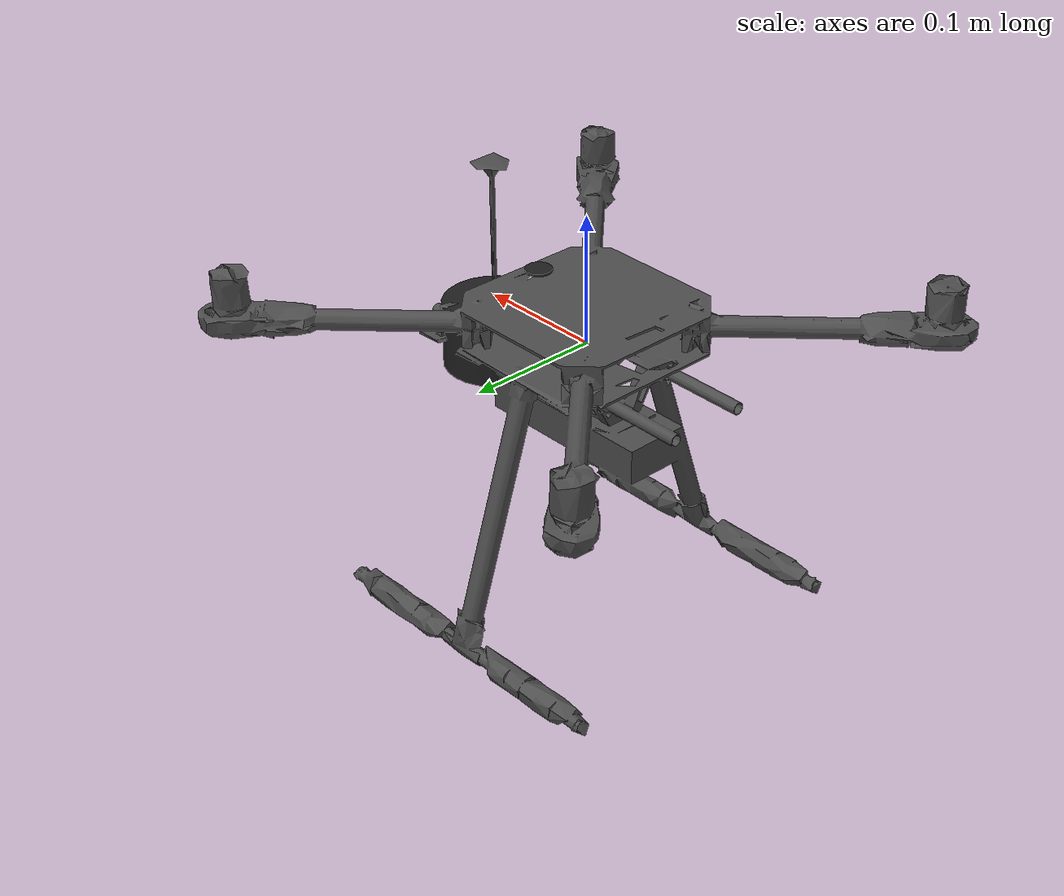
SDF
<?xml version='1.0'?>
<sdf version='1.5'>
  <model name='X5001'>
    <link name='base_link'>
      <pose>0 0 0 0 0 0</pose>
      <inertial>
        <pose>0 0 0 0 0 0</pose>
        <mass>1.543</mass>
        <inertia>
          <ixx>0.0206</ixx>
          <ixy>0</ixy>
          <ixz>0</ixz>
          <iyy>0.0210</iyy>
          <iyz>0</iyz>
          <izz>0.0297</izz>
        </inertia>
      </inertial>
      <collision name='base_link_inertia_collision'>
        <pose>0 0 0 0 0 0</pose>
        <geometry>
          <box>
            <size>0.41 0.41 0.8</size>
          </box>
        </geometry>
        <surface>
          <contact>
            <ode>
              <min_depth>0.001</min_depth>
              <max_vel>0</max_vel>
            </ode>
          </contact>
          <friction>
            <ode/>
          </friction>
        </surface>
      </collision>
      <visual name='base_link_inertia_visual'>
        <pose>0 0 0 1.5708 0 0</pose>
        <geometry>
          <mesh>
            <scale>1 1 1</scale>
            <uri>file:///home/ros_workspace/src/x500_py/models/X500_drone_mod.stl</uri>
          </mesh>
        </geometry>
        <material>
          <script>
            <name>Gazebo/DarkGrey</name>
            <uri>file://media/materials/scripts/gazebo.material</uri>
          </script>
        </material>
      </visual>
      <gravity>1</gravity>
      <velocity_decay/>
    </link>
    <link name='/imu_link'>
      <pose>0 0 0.02 0 0 0</pose>
      <inertial>
        <pose>0 0 0 0 0 0</pose>
        <mass>0.015</mass>
        <inertia>
          <ixx>1e-05</ixx>
          <ixy>0</ixy>
          <ixz>0</ixz>
          <iyy>1e-05</iyy>
          <iyz>0</iyz>
          <izz>1e-05</izz>
        </inertia>
      </inertial>
    </link>
    <joint name='/imu_joint' type='revolute'>
      <child>/imu_link</child>
      <parent>base_link</parent>
      <axis>
        <xyz>1 0 0</xyz>
        <limit>
          <lower>0</lower>
          <upper>0</upper>
          <effort>0</effort>
          <velocity>0</velocity>
        </limit>
        <dynamics>
          <spring_reference>0</spring_reference>
          <spring_stiffness>0</spring_stiffness>
        </dynamics>
        <use_parent_model_frame>1</use_parent_model_frame>
      </axis>
    </joint>

    <!-- 3D Lidar Link -->
    <link name='lidar_link'>
      <pose>0.099 0 -0.03 0 0 0</pose>
      <inertial>
        <pose>0 0 0 0 0 0</pose>
        <mass>0.01</mass>
        <inertia>
          <ixx>0.0001</ixx>
          <ixy>0</ixy>
          <ixz>0</ixz>
          <iyy>0.0001</iyy>
          <iyz>0</iyz>
          <izz>0.0001</izz>
        </inertia>
      </inertial>

      <visual name='lidar_visual'>
        <pose>0 0 0 0 0 0</pose>
        <geometry>
          <cylinder>
            <radius>0.04</radius>
            <length>0.05</length>
          </cylinder>
        </geometry>
        <material>
          <script>
            <name>Gazebo/Black</name>
            <uri>file://media/materials/scripts/gazebo.material</uri>
          </script>
        </material>
      </visual>

      <!-- 3D Lidar Sensor -->
      <sensor name='lidar_sensor' type='ray'>
        <pose>0 0 0 0 0 0</pose>
        <visualize>false</visualize>
        <update_rate>10</update_rate>
        <ray>
          <scan>
            <horizontal>
              <samples>1800</samples>
              <resolution>1</resolution>
              <min_angle>0</min_angle>
              <max_angle>6.28318</max_angle>
            </horizontal>
            <vertical>
              <samples>32</samples>
              <resolution>1</resolution>
              <min_angle>-0.963769998889</min_angle>
              <max_angle>0.126012665556</max_angle>
            </vertical>
          </scan>
          <range>
            <min>0.7</min>
            <max>40.0</max>
            <resolution>0.002</resolution>
          </range>
          <noise>
            <type>gaussian</type>
            <mean>0.0</mean>
            <stddev>0.01</stddev>
          </noise>
        </ray>
        <plugin name='gazebo_ros_laser_controller' filename='libgazebo_ros_velodyne_laser.so'>
          <robotNamespace></robotNamespace>
          <topicName>drone1/lidar/points</topicName>
          <frameName>drone1/lidar_link</frameName>
          <min_range>0.1</min_range>
          <max_range>40.0</max_range>
          <gaussianNoise>0.01</gaussianNoise>
        </plugin>
      </sensor>
    </link>

    <!-- Lidar Joint -->
    <joint name='lidar_joint' type='fixed'>
      <child>lidar_link</child>
      <parent>base_link</parent>
    </joint>

    <link name='rotor_0'>
      <pose>0.176 -0.176 0.056 0 0 0</pose>
      <inertial>
        <pose>0 0 0 0 0 0</pose>
        <mass>0.005</mass>
        <inertia>
          <ixx>9.75e-07</ixx>
          <ixy>0</ixy>
          <ixz>0</ixz>
          <iyy>0.000273104</iyy>
          <iyz>0</iyz>
          <izz>0.000274004</izz>
        </inertia>
      </inertial>
      <collision name='rotor_0_collision'>
        <pose>0 0 0 0 0 0</pose>
        <geometry>
          <cylinder>
            <length>0.005</length>
            <radius>0.128</radius>
          </cylinder>
        </geometry>
        <surface>
          <contact>
            <ode/>
          </contact>
          <friction>
            <ode/>
          </friction>
        </surface>
      </collision>
      <gravity>1</gravity>
      <velocity_decay/>
    </link>
    <joint name='rotor_0_joint' type='revolute'>
      <child>rotor_0</child>
      <parent>base_link</parent>
      <axis>
        <xyz>0 0 1</xyz>
        <limit>
          <lower>-1e+16</lower>
          <upper>1e+16</upper>
        </limit>
        <dynamics>
          <spring_reference>0</spring_reference>
          <spring_stiffness>0</spring_stiffness>
        </dynamics>
        <use_parent_model_frame>1</use_parent_model_frame>
      </axis>
    </joint>
    <link name='rotor_1'>
      <pose>-0.176 0.176 0.056 0 0 0</pose>
      <inertial>
        <pose>0 0 0 0 0 0</pose>
        <mass>0.005</mass>
        <inertia>
          <ixx>9.75e-07</ixx>
          <ixy>0</ixy>
          <ixz>0</ixz>
          <iyy>0.000273104</iyy>
          <iyz>0</iyz>
          <izz>0.000274004</izz>
        </inertia>
      </inertial>
      <collision name='rotor_1_collision'>
        <pose>0 0 0 0 0 0</pose>
        <geometry>
          <cylinder>
            <length>0.005</length>
            <radius>0.128</radius>
          </cylinder>
        </geometry>
        <surface>
          <contact>
            <ode/>
          </contact>
          <friction>
            <ode/>
          </friction>
        </surface>
      </collision>
      <gravity>1</gravity>
      <velocity_decay/>
    </link>
    <joint name='rotor_1_joint' type='revolute'>
      <child>rotor_1</child>
      <parent>base_link</parent>
      <axis>
        <xyz>0 0 1</xyz>
        <limit>
          <lower>-1e+16</lower>
          <upper>1e+16</upper>
        </limit>
        <dynamics>
          <spring_reference>0</spring_reference>
          <spring_stiffness>0</spring_stiffness>
        </dynamics>
        <use_parent_model_frame>1</use_parent_model_frame>
      </axis>
    </joint>
    <link name='rotor_2'>
      <pose>0.176 0.176 0.056 0 0 0</pose>
      <inertial>
        <pose>0 0 0 0 0 0</pose>
        <mass>0.005</mass>
        <inertia>
          <ixx>9.75e-07</ixx>
          <ixy>0</ixy>
          <ixz>0</ixz>
          <iyy>0.000273104</iyy>
          <iyz>0</iyz>
          <izz>0.000274004</izz>
        </inertia>
      </inertial>
      <collision name='rotor_2_collision'>
        <pose>0 0 0 0 0 0</pose>
        <geometry>
          <cylinder>
            <length>0.005</length>
            <radius>0.128</radius>
          </cylinder>
        </geometry>
        <surface>
          <contact>
            <ode/>
          </contact>
          <friction>
            <ode/>
          </friction>
        </surface>
      </collision>
      <gravity>1</gravity>
      <velocity_decay/>
    </link>
    <joint name='rotor_2_joint' type='revolute'>
      <child>rotor_2</child>
      <parent>base_link</parent>
      <axis>
        <xyz>0 0 1</xyz>
        <limit>
          <lower>-1e+16</lower>
          <upper>1e+16</upper>
        </limit>
        <dynamics>
          <spring_reference>0</spring_reference>
          <spring_stiffness>0</spring_stiffness>
        </dynamics>
        <use_parent_model_frame>1</use_parent_model_frame>
      </axis>
    </joint>
    <link name='rotor_3'>
      <pose>-0.176 -0.176 0.056 0 0 0</pose>
      <inertial>
        <pose>0 0 0 0 0 0</pose>
        <mass>0.005</mass>
        <inertia>
          <ixx>9.75e-07</ixx>
          <ixy>0</ixy>
          <ixz>0</ixz>
          <iyy>0.000273104</iyy>
          <iyz>0</iyz>
          <izz>0.000274004</izz>
        </inertia>
      </inertial>
      <collision name='rotor_3_collision'>
        <pose>0 0 0 0 0 0</pose>
        <geometry>
          <cylinder>
            <length>0.005</length>
            <radius>0.128</radius>
          </cylinder>
        </geometry>
        <surface>
          <contact>
            <ode/>
          </contact>
          <friction>
            <ode/>
          </friction>
        </surface>
      </collision>
      <gravity>1</gravity>
      <velocity_decay/>
    </link>
    <joint name='rotor_3_joint' type='revolute'>
      <child>rotor_3</child>
      <parent>base_link</parent>
      <axis>
        <xyz>0 0 1</xyz>
        <limit>
          <lower>-1e+16</lower>
          <upper>1e+16</upper>
        </limit>
        <dynamics>
          <spring_reference>0</spring_reference>
          <spring_stiffness>0</spring_stiffness>
        </dynamics>
        <use_parent_model_frame>1</use_parent_model_frame>
      </axis>
    </joint>
    <plugin name='rosbag' filename='libgazebo_multirotor_base_plugin.so'>
      <robotNamespace/>
      <linkName>base_link</linkName>
      <rotorVelocitySlowdownSim>10</rotorVelocitySlowdownSim>
    </plugin>
    <plugin name='front_right_motor_model' filename='libgazebo_motor_model.so'>
      <robotNamespace/>
      <jointName>rotor_0_joint</jointName>
      <linkName>rotor_0</linkName>
      <turningDirection>ccw</turningDirection>
      <timeConstantUp>0.0125</timeConstantUp>
      <timeConstantDown>0.025</timeConstantDown>
      <maxRotVelocity>1100</maxRotVelocity>
      <motorConstant>5.84e-06</motorConstant>
      <momentConstant>0.06</momentConstant>
      <commandSubTopic>/gazebo/command/motor_speed</commandSubTopic>
      <motorNumber>0</motorNumber>
      <rotorDragCoefficient>0.000175</rotorDragCoefficient>
      <rollingMomentCoefficient>1e-06</rollingMomentCoefficient>
      <motorSpeedPubTopic>/motor_speed/0</motorSpeedPubTopic>
      <rotorVelocitySlowdownSim>10</rotorVelocitySlowdownSim>
    </plugin>
    <plugin name='back_left_motor_model' filename='libgazebo_motor_model.so'>
      <robotNamespace/>
      <jointName>rotor_1_joint</jointName>
      <linkName>rotor_1</linkName>
      <turningDirection>ccw</turningDirection>
      <timeConstantUp>0.0125</timeConstantUp>
      <timeConstantDown>0.025</timeConstantDown>
      <maxRotVelocity>1100</maxRotVelocity>
      <motorConstant>5.84e-06</motorConstant>
      <momentConstant>0.06</momentConstant>
      <commandSubTopic>/gazebo/command/motor_speed</commandSubTopic>
      <motorNumber>1</motorNumber>
      <rotorDragCoefficient>0.000175</rotorDragCoefficient>
      <rollingMomentCoefficient>1e-06</rollingMomentCoefficient>
      <motorSpeedPubTopic>/motor_speed/1</motorSpeedPubTopic>
      <rotorVelocitySlowdownSim>10</rotorVelocitySlowdownSim>
    </plugin>
    <plugin name='front_left_motor_model' filename='libgazebo_motor_model.so'>
      <robotNamespace/>
      <jointName>rotor_2_joint</jointName>
      <linkName>rotor_2</linkName>
      <turningDirection>cw</turningDirection>
      <timeConstantUp>0.0125</timeConstantUp>
      <timeConstantDown>0.025</timeConstantDown>
      <maxRotVelocity>1100</maxRotVelocity>
      <motorConstant>5.84e-06</motorConstant>
      <momentConstant>0.06</momentConstant>
      <commandSubTopic>/gazebo/command/motor_speed</commandSubTopic>
      <motorNumber>2</motorNumber>
      <rotorDragCoefficient>0.000175</rotorDragCoefficient>
      <rollingMomentCoefficient>1e-06</rollingMomentCoefficient>
      <motorSpeedPubTopic>/motor_speed/2</motorSpeedPubTopic>
      <rotorVelocitySlowdownSim>10</rotorVelocitySlowdownSim>
    </plugin>
    <plugin name='back_right_motor_model' filename='libgazebo_motor_model.so'>
      <robotNamespace/>
      <jointName>rotor_3_joint</jointName>
      <linkName>rotor_3</linkName>
      <turningDirection>cw</turningDirection>
      <timeConstantUp>0.0125</timeConstantUp>
      <timeConstantDown>0.025</timeConstantDown>
      <maxRotVelocity>1100</maxRotVelocity>
      <motorConstant>5.84e-06</motorConstant>
      <momentConstant>0.06</momentConstant>
      <commandSubTopic>/gazebo/command/motor_speed</commandSubTopic>
      <motorNumber>3</motorNumber>
      <rotorDragCoefficient>0.000175</rotorDragCoefficient>
      <rollingMomentCoefficient>1e-06</rollingMomentCoefficient>
      <motorSpeedPubTopic>/motor_speed/3</motorSpeedPubTopic>
      <rotorVelocitySlowdownSim>10</rotorVelocitySlowdownSim>
    </plugin>

    <include>
      <uri>model://gps</uri>
      <pose>0.05 0 0.04 0 0 0</pose>
      <name>gps0</name>
    </include>
    <joint name='gps0_joint' type='fixed'>
      <child>gps0::link</child>
      <parent>base_link</parent>
    </joint>

    <!-- Ground Truth using P3D plugin (standard Gazebo plugin) -->
    <plugin name='gazebo_ros_p3d' filename='libgazebo_ros_p3d.so'>
      <robotNamespace>/drone1</robotNamespace>
      <bodyName>base_link</bodyName>
      <topicName>ground_truth/state</topicName>
      <frameName>world</frameName>
      <xyzOffsets>0 0 0</xyzOffsets>
      <rpyOffsets>0 0 0</rpyOffsets>
      <updateRate>1000</updateRate>
    </plugin>

    <plugin name='magnetometer_plugin' filename='libgazebo_magnetometer_plugin.so'>
      <robotNamespace/>
      <pubRate>100</pubRate>
      <noiseDensity>0.0004</noiseDensity>
      <randomWalk>6.4e-06</randomWalk>
      <biasCorrelationTime>600</biasCorrelationTime>
      <magTopic>/mag</magTopic>
    </plugin>
    <plugin name='barometer_plugin' filename='libgazebo_barometer_plugin.so'>
      <robotNamespace/>
      <pubRate>50</pubRate>
      <baroTopic>/baro</baroTopic>
      <baroDriftPaPerSec>0</baroDriftPaPerSec>
    </plugin>
    <plugin name='mavlink_interface' filename='libgazebo_mavlink_interface.so'>
      <robotNamespace/>
      <imuSubTopic>/imu</imuSubTopic>
      <magSubTopic>/mag</magSubTopic>
      <baroSubTopic>/baro</baroSubTopic>
      <mavlink_addr>INADDR_ANY</mavlink_addr>
      <mavlink_tcp_port>4560</mavlink_tcp_port>
      <mavlink_udp_port>14557</mavlink_udp_port>
      <serialEnabled>0</serialEnabled>
      <serialDevice>/dev/ttyACM0</serialDevice>
      <baudRate>921600</baudRate>
      <qgc_addr>INADDR_ANY</qgc_addr>
      <qgc_udp_port>14550</qgc_udp_port>
      <sdk_addr>INADDR_ANY</sdk_addr>
      <sdk_udp_port>14540</sdk_udp_port>
      <hil_mode>0</hil_mode>
      <hil_state_level>0</hil_state_level>
      <send_vision_estimation>0</send_vision_estimation>
      <send_odometry>1</send_odometry>
      <enable_lockstep>1</enable_lockstep>
      <use_tcp>1</use_tcp>
      <motorSpeedCommandPubTopic>/gazebo/command/motor_speed</motorSpeedCommandPubTopic>
      <control_channels>
        <channel name='rotor1'>
          <input_index>0</input_index>
          <input_offset>0</input_offset>
          <input_scaling>1000</input_scaling>
          <zero_position_disarmed>0</zero_position_disarmed>
          <zero_position_armed>100</zero_position_armed>
          <joint_control_type>velocity</joint_control_type>
        </channel>
        <channel name='rotor2'>
          <input_index>1</input_index>
          <input_offset>0</input_offset>
          <input_scaling>1000</input_scaling>
          <zero_position_disarmed>0</zero_position_disarmed>
          <zero_position_armed>100</zero_position_armed>
          <joint_control_type>velocity</joint_control_type>
        </channel>
        <channel name='rotor3'>
          <input_index>2</input_index>
          <input_offset>0</input_offset>
          <input_scaling>1000</input_scaling>
          <zero_position_disarmed>0</zero_position_disarmed>
          <zero_position_armed>100</zero_position_armed>
          <joint_control_type>velocity</joint_control_type>
        </channel>
        <channel name='rotor4'>
          <input_index>3</input_index>
          <input_offset>0</input_offset>
          <input_scaling>1000</input_scaling>
          <zero_position_disarmed>0</zero_position_disarmed>
          <zero_position_armed>100</zero_position_armed>
          <joint_control_type>velocity</joint_control_type>
        </channel>
        <channel name='rotor5'>
          <input_index>4</input_index>
          <input_offset>1</input_offset>
          <input_scaling>324.6</input_scaling>
          <zero_position_disarmed>0</zero_position_disarmed>
          <zero_position_armed>0</zero_position_armed>
          <joint_control_type>velocity</joint_control_type>
          <joint_control_pid>
            <p>0.1</p>
            <i>0</i>
            <d>0</d>
            <iMax>0.0</iMax>
            <iMin>0.0</iMin>
            <cmdMax>2</cmdMax>
            <cmdMin>-2</cmdMin>
          </joint_control_pid>
          <joint_name>zephyr_delta_wing::propeller_joint</joint_name>
        </channel>
        <channel name='rotor6'>
          <input_index>5</input_index>
          <input_offset>0</input_offset>
          <input_scaling>0.524</input_scaling>
          <zero_position_disarmed>0</zero_position_disarmed>
          <zero_position_armed>0</zero_position_armed>
          <joint_control_type>position</joint_control_type>
          <joint_name>zephyr_delta_wing::flap_left_joint</joint_name>
          <joint_control_pid>
            <p>10.0</p>
            <i>0</i>
            <d>0</d>
            <iMax>0</iMax>
            <iMin>0</iMin>
            <cmdMax>20</cmdMax>
            <cmdMin>-20</cmdMin>
          </joint_control_pid>
        </channel>
        <channel name='rotor7'>
          <input_index>6</input_index>
          <input_offset>0</input_offset>
          <input_scaling>0.524</input_scaling>
          <zero_position_disarmed>0</zero_position_disarmed>
          <zero_position_armed>0</zero_position_armed>
          <joint_control_type>position</joint_control_type>
          <joint_name>zephyr_delta_wing::flap_right_joint</joint_name>
          <joint_control_pid>
            <p>10.0</p>
            <i>0</i>
            <d>0</d>
            <iMax>0</iMax>
            <iMin>0</iMin>
            <cmdMax>20</cmdMax>
            <cmdMin>-20</cmdMin>
          </joint_control_pid>
        </channel>
        <channel name='rotor8'>
          <input_index>7</input_index>
          <input_offset>0</input_offset>
          <input_scaling>0.524</input_scaling>
          <zero_position_disarmed>0</zero_position_disarmed>
          <zero_position_armed>0</zero_position_armed>
          <joint_control_type>position</joint_control_type>
        </channel>
      </control_channels>
    </plugin>
    <static>0</static>
    <plugin name='rotors_gazebo_imu_plugin' filename='libgazebo_imu_plugin.so'>
      <robotNamespace/>
      <linkName>/imu_link</linkName>
      <imuTopic>/imu</imuTopic>
    </plugin>
  </model>
</sdf>

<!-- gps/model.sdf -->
<sdf version="1.6">
  <model name="gps">
    <link name="link">
      <pose>0 0 0 0 0 0</pose>
      <inertial>
        <pose>0 0 0 0 0 0</pose>
        <mass>0.015</mass>
        <inertia>
          <ixx>1e-05</ixx>
          <ixy>0</ixy>
          <ixz>0</ixz>
          <iyy>1e-05</iyy>
          <iyz>0</iyz>
          <izz>1e-05</izz>
        </inertia>
      </inertial>
      <visual name="visual">
        <geometry>
          <cylinder>
            <radius>0.01</radius>
            <length>0.002</length>
          </cylinder>
        </geometry>
        <material>
          <script>
            <name>Gazebo/Black</name>
            <uri>file://usr/share/gz/gz-sim8/media/gazebo.material</uri>
          </script>
        </material>
      </visual>
      <sensor name="gps" type="gps">
        <pose>0 0 0 0 0 0</pose>
        <update_rate>5.0</update_rate>
        <always_on>true</always_on>
        <visualize>false</visualize>
        <!-- GpsSensor noise currently not used -->
        <plugin name="gps_plugin" filename="libgazebo_gps_plugin.so">
          <robotNamespace></robotNamespace>
          <gpsNoise>true</gpsNoise>
          <gpsXYRandomWalk>2.0</gpsXYRandomWalk>
          <gpsZRandomWalk>4.0</gpsZRandomWalk>
          <gpsXYNoiseDensity>2.0e-4</gpsXYNoiseDensity>
          <gpsZNoiseDensity>4.0e-4</gpsZNoiseDensity>
          <gpsVXYNoiseDensity>0.2</gpsVXYNoiseDensity>
          <gpsVZNoiseDensity>0.4</gpsVZNoiseDensity>
        </plugin>
      </sensor>
    </link>
  </model>
</sdf>
